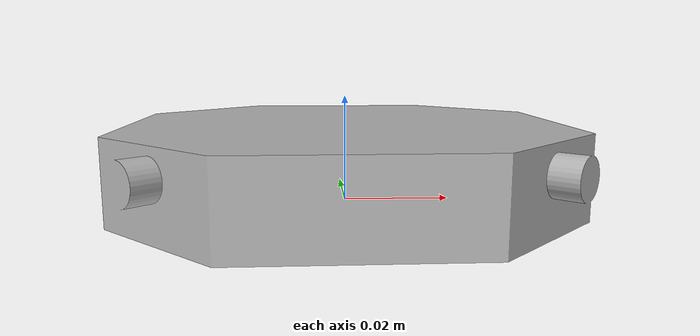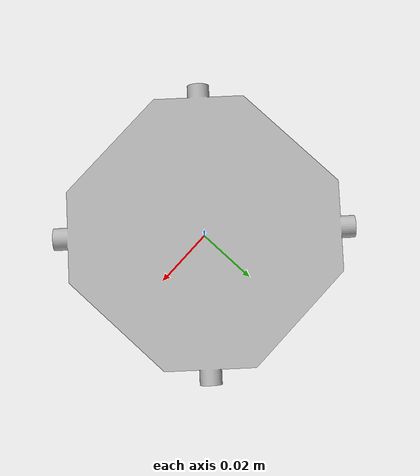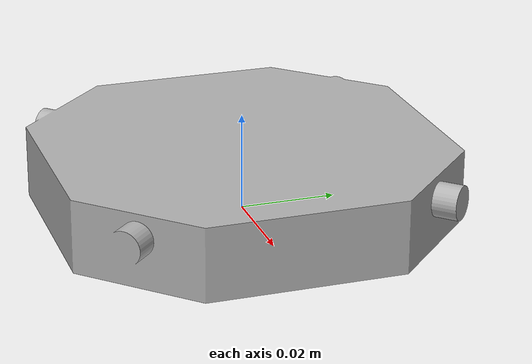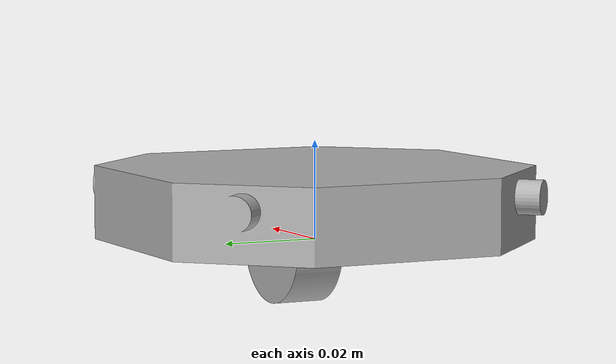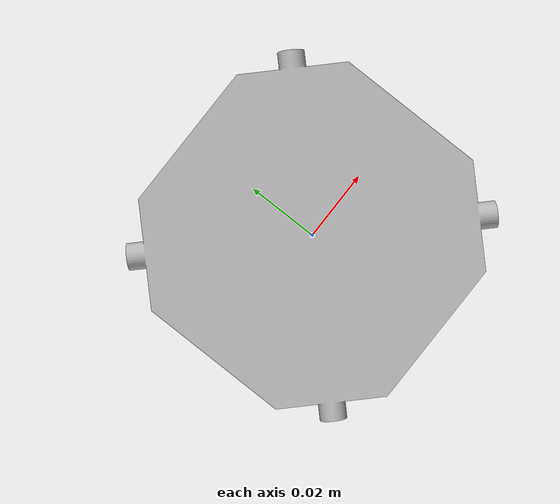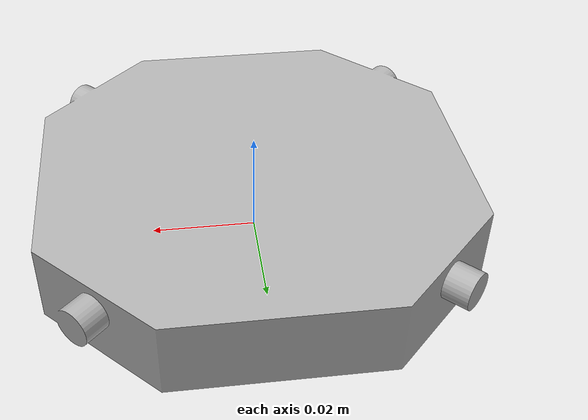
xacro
<?xml version="1.0" ?>
<robot name="omni_chassis_basic" xmlns:xacro="http://www.ros.org/wiki/xacro">

<xacro:include filename="$(find omni_chassis_basic_description)/urdf/materials.xacro" />
<xacro:include filename="$(find omni_chassis_basic_description)/urdf/omni_chassis_basic.trans" />
<xacro:include filename="$(find omni_chassis_basic_description)/urdf/omni_chassis_basic.gazebo" />
<link name="base_link">
  <inertial>
    <origin xyz="-6.705630128718006e-18 1.3411260257436013e-17 0.007522699451841583" rpy="0 0 0"/>
    <mass value="0.6654420680710168"/>
    <inertia ixx="0.000314" iyy="0.000314" izz="0.000603" ixy="-0.0" iyz="0.0" ixz="0.0"/>
  </inertial>
  <visual>
    <origin xyz="0 0 0" rpy="0 0 0"/>
    <geometry>
      <mesh filename="file://$(find omni_chassis_basic_description)/meshes/base_link.stl" scale="0.001 0.001 0.001"/>
    </geometry>
    <material name="silver"/>
  </visual>
  <collision>
    <origin xyz="0 0 0" rpy="0 0 0"/>
    <geometry>
      <mesh filename="file://$(find omni_chassis_basic_description)/meshes/base_link.stl" scale="0.001 0.001 0.001"/>
    </geometry>
  </collision>
</link>

<link name="wheel_r_f_1">
  <inertial>
    <origin xyz="0.0035350678118654597 -0.0035350678118654597 3.469446951953614e-18" rpy="0 0 0"/>
    <mass value="0.0385335973916873"/>
    <inertia ixx="2e-06" iyy="2e-06" izz="2e-06" ixy="-1e-06" iyz="0.0" ixz="0.0"/>
  </inertial>
  <visual>
    <origin xyz="-0.033536 0.033536 -0.01" rpy="0 0 0"/>
    <geometry>
      <mesh filename="file://$(find omni_chassis_basic_description)/meshes/wheel_r_f.stl" scale="0.001 0.001 0.001"/>
    </geometry>
    <material name="silver"/>
  </visual>
  <collision>
    <origin xyz="-0.033536 0.033536 -0.01" rpy="0 0 0"/>
    <geometry>
      <mesh filename="file://$(find omni_chassis_basic_description)/meshes/wheel_r_f.stl" scale="0.001 0.001 0.001"/>
    </geometry>
  </collision>
</link>

<link name="wheel_r_b_1">
  <inertial>
    <origin xyz="-0.0035350678118654527 -0.0035350678118655013 -3.469446951953614e-18" rpy="0 0 0"/>
    <mass value="0.0385335973916873"/>
    <inertia ixx="2e-06" iyy="2e-06" izz="2e-06" ixy="1e-06" iyz="0.0" ixz="0.0"/>
  </inertial>
  <visual>
    <origin xyz="0.033536 0.033536 -0.01" rpy="0 0 0"/>
    <geometry>
      <mesh filename="file://$(find omni_chassis_basic_description)/meshes/wheel_r_b.stl" scale="0.001 0.001 0.001"/>
    </geometry>
    <material name="silver"/>
  </visual>
  <collision>
    <origin xyz="0.033536 0.033536 -0.01" rpy="0 0 0"/>
    <geometry>
      <mesh filename="file://$(find omni_chassis_basic_description)/meshes/wheel_r_b.stl" scale="0.001 0.001 0.001"/>
    </geometry>
  </collision>
</link>

<link name="wheel_l_f_1">
  <inertial>
    <origin xyz="0.0035350678118654874 0.0035350678118654735 3.469446951953614e-18" rpy="0 0 0"/>
    <mass value="0.0385335973916873"/>
    <inertia ixx="2e-06" iyy="2e-06" izz="2e-06" ixy="1e-06" iyz="-0.0" ixz="-0.0"/>
  </inertial>
  <visual>
    <origin xyz="-0.033536 -0.033536 -0.01" rpy="0 0 0"/>
    <geometry>
      <mesh filename="file://$(find omni_chassis_basic_description)/meshes/wheel_l_f.stl" scale="0.001 0.001 0.001"/>
    </geometry>
    <material name="silver"/>
  </visual>
  <collision>
    <origin xyz="-0.033536 -0.033536 -0.01" rpy="0 0 0"/>
    <geometry>
      <mesh filename="file://$(find omni_chassis_basic_description)/meshes/wheel_l_f.stl" scale="0.001 0.001 0.001"/>
    </geometry>
  </collision>
</link>

<link name="wheel_l_b_1">
  <inertial>
    <origin xyz="-0.0035350678118654874 0.0035350678118654527 3.469446951953614e-18" rpy="0 0 0"/>
    <mass value="0.0385335973916873"/>
    <inertia ixx="2e-06" iyy="2e-06" izz="2e-06" ixy="-1e-06" iyz="0.0" ixz="0.0"/>
  </inertial>
  <visual>
    <origin xyz="0.033536 -0.033536 -0.01" rpy="0 0 0"/>
    <geometry>
      <mesh filename="file://$(find omni_chassis_basic_description)/meshes/wheel_l_b.stl" scale="0.001 0.001 0.001"/>
    </geometry>
    <material name="silver"/>
  </visual>
  <collision>
    <origin xyz="0.033536 -0.033536 -0.01" rpy="0 0 0"/>
    <geometry>
      <mesh filename="file://$(find omni_chassis_basic_description)/meshes/wheel_l_b.stl" scale="0.001 0.001 0.001"/>
    </geometry>
  </collision>
</link>

<link name="base_footprint">

</link>

<joint name="footprint_base_joint" type="fixed">
  <origin xyz="0.0 0.0 0.02" rpy="0 0 0"/>
  <parent link="base_link"/>
  <child link="base_footprint"/>
</joint>

<joint name="Revolute 1" type="continuous">
  <origin xyz="0.033536 -0.033536 0.01" rpy="0 0 0"/>
  <parent link="base_link"/>
  <child link="wheel_r_f_1"/>
  <axis xyz="0.0 1.0 0.0"/>
</joint>

<joint name="Revolute 2" type="continuous">
  <origin xyz="-0.033536 -0.033536 0.01" rpy="0 0 0"/>
  <parent link="base_link"/>
  <child link="wheel_r_b_1"/>
  <axis xyz="0.0 1.0 0.0"/>
</joint>

<joint name="Revolute 3" type="continuous">
  <origin xyz="0.033536 0.033536 0.01" rpy="0 0 0"/>
  <parent link="base_link"/>
  <child link="wheel_l_f_1"/>
  <axis xyz="0.0 1.0 0.0"/>
</joint>

<joint name="Revolute 4" type="continuous">
  <origin xyz="-0.033536 0.033536 0.01" rpy="0 0 0"/>
  <parent link="base_link"/>
  <child link="wheel_l_b_1"/>
  <axis xyz="0.0 1.0 0.0"/>
</joint>

</robot>

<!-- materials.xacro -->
<robot name="omni_chassis_basic" xmlns:xacro="http://www.ros.org/wiki/xacro" >

<material name="silver">
  <color rgba="0.700 0.700 0.700 1.000"/>
</material>

</robot>

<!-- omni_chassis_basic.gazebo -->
<robot name="omni_chassis_basic" xmlns:xacro="http://www.ros.org/wiki/xacro" >

<xacro:property name="body_color" value="Gazebo/Silver" />

<gazebo>
  <plugin name="control" filename="libgazebo_ros_control.so"/>
</gazebo>
<gazebo reference="base_link">
  <material>${body_color}</material>
  <mu1>0.2</mu1>
  <mu2>0.2</mu2>
  <self_collide>true</self_collide>
  <gravity>true</gravity>
</gazebo>

<gazebo reference="wheel_r_f_1">
  <material>${body_color}</material>
  <mu1>0.2</mu1>
  <mu2>0.2</mu2>
  <self_collide>true</self_collide>
</gazebo>

<gazebo reference="wheel_r_b_1">
  <material>${body_color}</material>
  <mu1>0.2</mu1>
  <mu2>0.2</mu2>
  <self_collide>true</self_collide>
</gazebo>

<gazebo reference="wheel_l_f_1">
  <material>${body_color}</material>
  <mu1>0.2</mu1>
  <mu2>0.2</mu2>
  <self_collide>true</self_collide>
</gazebo>

<gazebo reference="wheel_l_b_1">
  <material>${body_color}</material>
  <mu1>0.2</mu1>
  <mu2>0.2</mu2>
  <self_collide>true</self_collide>
</gazebo>

</robot>
